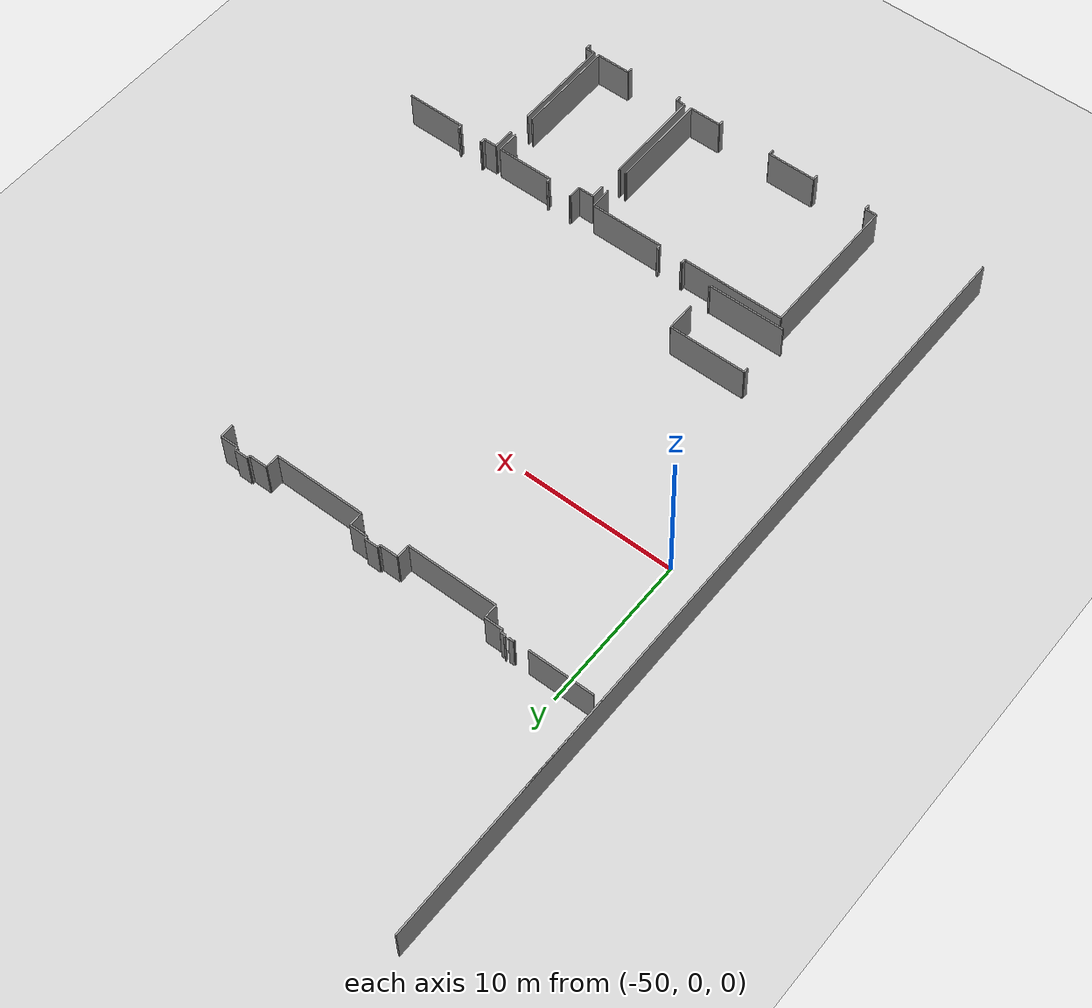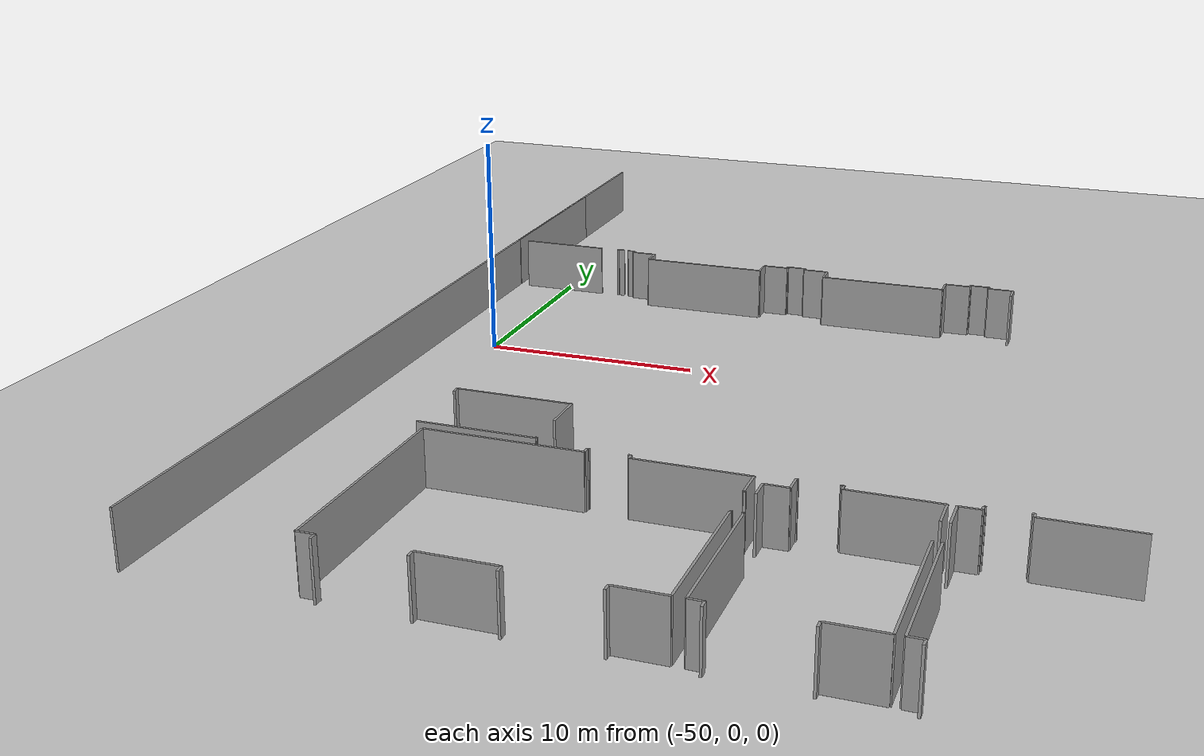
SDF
<sdf version="1.6">
 <world name="default">
  <model name="ground_plane">
   <static>1</static>
   <link name="link">
    <collision name="collision">
     <geometry><plane><normal>0 0 1</normal><size>100 100</size></plane></geometry>
     <surface><friction><ode><mu>100</mu><mu2>50</mu2></ode></friction></surface>
    </collision>
    <visual name="visual">
     <cast_shadows>0</cast_shadows>
     <geometry><plane><normal>0 0 1</normal><size>100 100</size></plane></geometry>
     <material>
      <script><uri>file://media/materials/scripts/gazebo.material</uri><name>Gazebo/Grey</name></script>
     </material>
    </visual>
   </link>
  </model>
  <model name="50045368">
   <static>1</static>
   <link name="Wall_22">
    <collision name="Wall_22_Collision">
     <geometry><box><size>9.61041931385 0.1 2.5</size></box></geometry>
     <pose>4.80520965693 0 1.25 0 0 0</pose>
    </collision>
    <visual name="Wall_22_Visual">
     <pose>4.80520965693 0 1.25 0 0 0</pose>
     <geometry><box><size>9.61041931385 0.1 2.5</size></box></geometry>
     <material>
      <script><uri>file://media/materials/scripts/gazebo.material</uri><name>Gazebo/Grey</name></script>
      <ambient>1 1 1 1</ambient>
     </material>
    </visual>
    <pose>0.00368487928844 -16.0022871665 0 0 0 1.57079632679</pose>
   </link>
   <link name="Wall_31">
    <collision name="Wall_31_Collision">
     <geometry><box><size>0.328716645489 0.1 2.5</size></box></geometry>
     <pose>0.164358322745 0 1.25 0 0 0</pose>
    </collision>
    <visual name="Wall_31_Visual">
     <pose>0.164358322745 0 1.25 0 0 0</pose>
     <geometry><box><size>0.328716645489 0.1 2.5</size></box></geometry>
     <material>
      <script><uri>file://media/materials/scripts/gazebo.material</uri><name>Gazebo/Grey</name></script>
      <ambient>1 1 1 1</ambient>
     </material>
    </visual>
    <pose>6.02121982211 -15.9770012706 0 0 0 3.14159265359</pose>
   </link>
   <link name="Wall_32">
    <collision name="Wall_32_Collision">
     <geometry><box><size>0.0722998729352 0.1 2.5</size></box></geometry>
     <pose>0.0361499364676 0 1.25 0 0 0</pose>
    </collision>
    <visual name="Wall_32_Visual">
     <pose>0.0361499364676 0 1.25 0 0 0</pose>
     <geometry><box><size>0.0722998729352 0.1 2.5</size></box></geometry>
     <material>
      <script><uri>file://media/materials/scripts/gazebo.material</uri><name>Gazebo/Grey</name></script>
      <ambient>1 1 1 1</ambient>
     </material>
    </visual>
    <pose>5.69250317662 -15.9770012706 0 0 0 -1.57079632679</pose>
   </link>
   <link name="Wall_33">
    <collision name="Wall_33_Collision">
     <geometry><box><size>4.24764930114 0.1 2.5</size></box></geometry>
     <pose>2.12382465057 0 1.25 0 0 0</pose>
    </collision>
    <visual name="Wall_33_Visual">
     <pose>2.12382465057 0 1.25 0 0 0</pose>
     <geometry><box><size>4.24764930114 0.1 2.5</size></box></geometry>
     <material>
      <script><uri>file://media/materials/scripts/gazebo.material</uri><name>Gazebo/Grey</name></script>
      <ambient>1 1 1 1</ambient>
     </material>
    </visual>
    <pose>4.7750952986 -16.0493011436 0 0 0 3.14159265359</pose>
   </link>
   <link name="Wall_34">
    <collision name="Wall_34_Collision">
     <geometry><box><size>0.0471581634587 0.1 2.5</size></box></geometry>
     <pose>0.0235790817293 0 1.25 0 0 0</pose>
    </collision>
    <visual name="Wall_34_Visual">
     <pose>0.0235790817293 0 1.25 0 0 0</pose>
     <geometry><box><size>0.0471581634587 0.1 2.5</size></box></geometry>
     <material>
      <script><uri>file://media/materials/scripts/gazebo.material</uri><name>Gazebo/Grey</name></script>
      <ambient>1 1 1 1</ambient>
     </material>
    </visual>
    <pose>0.0 -16.0493011436 0 0 0 1.49257785666</pose>
   </link>
   <link name="Wall_148">
    <collision name="Wall_148_Collision">
     <geometry><box><size>0.902795425667 0.1 2.5</size></box></geometry>
     <pose>0.451397712834 0 1.25 0 0 0</pose>
    </collision>
    <visual name="Wall_148_Visual">
     <pose>0.451397712834 0 1.25 0 0 0</pose>
     <geometry><box><size>0.902795425667 0.1 2.5</size></box></geometry>
     <material>
      <script><uri>file://media/materials/scripts/gazebo.material</uri><name>Gazebo/Grey</name></script>
      <ambient>1 1 1 1</ambient>
     </material>
    </visual>
    <pose>26.256797967 -17.0824650572 0 0 0 1.57079632679</pose>
   </link>
   <link name="Wall_149">
    <collision name="Wall_149_Collision">
     <geometry><box><size>1.18462515883 0.1 2.5</size></box></geometry>
     <pose>0.592312579416 0 1.25 0 0 0</pose>
    </collision>
    <visual name="Wall_149_Visual">
     <pose>0.592312579416 0 1.25 0 0 0</pose>
     <geometry><box><size>1.18462515883 0.1 2.5</size></box></geometry>
     <material>
      <script><uri>file://media/materials/scripts/gazebo.material</uri><name>Gazebo/Grey</name></script>
      <ambient>1 1 1 1</ambient>
     </material>
    </visual>
    <pose>26.256797967 -16.1796696315 0 0 0 3.14159265359</pose>
   </link>
   <link name="Wall_150">
    <collision name="Wall_150_Collision">
     <geometry><box><size>0.195933926302 0.1 2.5</size></box></geometry>
     <pose>0.0979669631512 0 1.25 0 0 0</pose>
    </collision>
    <visual name="Wall_150_Visual">
     <pose>0.0979669631512 0 1.25 0 0 0</pose>
     <geometry><box><size>0.195933926302 0.1 2.5</size></box></geometry>
     <material>
      <script><uri>file://media/materials/scripts/gazebo.material</uri><name>Gazebo/Grey</name></script>
      <ambient>1 1 1 1</ambient>
     </material>
    </visual>
    <pose>25.0721728081 -16.1796696315 0 0 0 1.57079632679</pose>
   </link>
   <link name="Wall_151">
    <collision name="Wall_151_Collision">
     <geometry><box><size>0.898094027954 0.1 2.5</size></box></geometry>
     <pose>0.449047013977 0 1.25 0 0 0</pose>
    </collision>
    <visual name="Wall_151_Visual">
     <pose>0.449047013977 0 1.25 0 0 0</pose>
     <geometry><box><size>0.898094027954 0.1 2.5</size></box></geometry>
     <material>
      <script><uri>file://media/materials/scripts/gazebo.material</uri><name>Gazebo/Grey</name></script>
      <ambient>1 1 1 1</ambient>
     </material>
    </visual>
    <pose>25.0721728081 -15.9837357052 0 0 0 3.14159265359</pose>
   </link>
   <link name="Wall_152">
    <collision name="Wall_152_Collision">
     <geometry><box><size>0.195933926302 0.1 2.5</size></box></geometry>
     <pose>0.0979669631512 0 1.25 0 0 0</pose>
    </collision>
    <visual name="Wall_152_Visual">
     <pose>0.0979669631512 0 1.25 0 0 0</pose>
     <geometry><box><size>0.195933926302 0.1 2.5</size></box></geometry>
     <material>
      <script><uri>file://media/materials/scripts/gazebo.material</uri><name>Gazebo/Grey</name></script>
      <ambient>1 1 1 1</ambient>
     </material>
    </visual>
    <pose>24.1740787802 -15.9837357052 0 0 0 -1.57079632679</pose>
   </link>
   <link name="Wall_153">
    <collision name="Wall_153_Collision">
     <geometry><box><size>1.20368487929 0.1 2.5</size></box></geometry>
     <pose>0.601842439644 0 1.25 0 0 0</pose>
    </collision>
    <visual name="Wall_153_Visual">
     <pose>0.601842439644 0 1.25 0 0 0</pose>
     <geometry><box><size>1.20368487929 0.1 2.5</size></box></geometry>
     <material>
      <script><uri>file://media/materials/scripts/gazebo.material</uri><name>Gazebo/Grey</name></script>
      <ambient>1 1 1 1</ambient>
     </material>
    </visual>
    <pose>24.1740787802 -16.1796696315 0 0 0 3.14159265359</pose>
   </link>
   <link name="Wall_154">
    <collision name="Wall_154_Collision">
     <geometry><box><size>0.902795425667 0.1 2.5</size></box></geometry>
     <pose>0.451397712834 0 1.25 0 0 0</pose>
    </collision>
    <visual name="Wall_154_Visual">
     <pose>0.451397712834 0 1.25 0 0 0</pose>
     <geometry><box><size>0.902795425667 0.1 2.5</size></box></geometry>
     <material>
      <script><uri>file://media/materials/scripts/gazebo.material</uri><name>Gazebo/Grey</name></script>
      <ambient>1 1 1 1</ambient>
     </material>
    </visual>
    <pose>22.9703939009 -16.1796696315 0 0 0 -1.57079632679</pose>
   </link>
   <link name="Wall_155">
    <collision name="Wall_155_Collision">
     <geometry><box><size>5.95743329098 0.1 2.5</size></box></geometry>
     <pose>2.97871664549 0 1.25 0 0 0</pose>
    </collision>
    <visual name="Wall_155_Visual">
     <pose>2.97871664549 0 1.25 0 0 0</pose>
     <geometry><box><size>5.95743329098 0.1 2.5</size></box></geometry>
     <material>
      <script><uri>file://media/materials/scripts/gazebo.material</uri><name>Gazebo/Grey</name></script>
      <ambient>1 1 1 1</ambient>
     </material>
    </visual>
    <pose>22.9703939009 -17.0824650572 0 0 0 3.14159265359</pose>
   </link>
   <link name="Wall_156">
    <collision name="Wall_156_Collision">
     <geometry><box><size>0.906861499365 0.1 2.5</size></box></geometry>
     <pose>0.453430749682 0 1.25 0 0 0</pose>
    </collision>
    <visual name="Wall_156_Visual">
     <pose>0.453430749682 0 1.25 0 0 0</pose>
     <geometry><box><size>0.906861499365 0.1 2.5</size></box></geometry>
     <material>
      <script><uri>file://media/materials/scripts/gazebo.material</uri><name>Gazebo/Grey</name></script>
      <ambient>1 1 1 1</ambient>
     </material>
    </visual>
    <pose>17.0129606099 -17.0824650572 0 0 0 1.57079632679</pose>
   </link>
   <link name="Wall_157">
    <collision name="Wall_157_Collision">
     <geometry><box><size>1.20304955527 0.1 2.5</size></box></geometry>
     <pose>0.601524777637 0 1.25 0 0 0</pose>
    </collision>
    <visual name="Wall_157_Visual">
     <pose>0.601524777637 0 1.25 0 0 0</pose>
     <geometry><box><size>1.20304955527 0.1 2.5</size></box></geometry>
     <material>
      <script><uri>file://media/materials/scripts/gazebo.material</uri><name>Gazebo/Grey</name></script>
      <ambient>1 1 1 1</ambient>
     </material>
    </visual>
    <pose>17.0129606099 -16.1756035578 0 0 0 3.14159265359</pose>
   </link>
   <link name="Wall_158">
    <collision name="Wall_158_Collision">
     <geometry><box><size>0.175857687421 0.1 2.5</size></box></geometry>
     <pose>0.0879288437103 0 1.25 0 0 0</pose>
    </collision>
    <visual name="Wall_158_Visual">
     <pose>0.0879288437103 0 1.25 0 0 0</pose>
     <geometry><box><size>0.175857687421 0.1 2.5</size></box></geometry>
     <material>
      <script><uri>file://media/materials/scripts/gazebo.material</uri><name>Gazebo/Grey</name></script>
      <ambient>1 1 1 1</ambient>
     </material>
    </visual>
    <pose>15.8099110546 -16.1756035578 0 0 0 1.57079632679</pose>
   </link>
   <link name="Wall_159">
    <collision name="Wall_159_Collision">
     <geometry><box><size>0.889961880559 0.1 2.5</size></box></geometry>
     <pose>0.44498094028 0 1.25 0 0 0</pose>
    </collision>
    <visual name="Wall_159_Visual">
     <pose>0.44498094028 0 1.25 0 0 0</pose>
     <geometry><box><size>0.889961880559 0.1 2.5</size></box></geometry>
     <material>
      <script><uri>file://media/materials/scripts/gazebo.material</uri><name>Gazebo/Grey</name></script>
      <ambient>1 1 1 1</ambient>
     </material>
    </visual>
    <pose>15.8099110546 -15.9997458704 0 0 0 3.14159265359</pose>
   </link>
   <link name="Wall_160">
    <collision name="Wall_160_Collision">
     <geometry><box><size>0.192249047014 0.1 2.5</size></box></geometry>
     <pose>0.096124523507 0 1.25 0 0 0</pose>
    </collision>
    <visual name="Wall_160_Visual">
     <pose>0.096124523507 0 1.25 0 0 0</pose>
     <geometry><box><size>0.192249047014 0.1 2.5</size></box></geometry>
     <material>
      <script><uri>file://media/materials/scripts/gazebo.material</uri><name>Gazebo/Grey</name></script>
      <ambient>1 1 1 1</ambient>
     </material>
    </visual>
    <pose>14.9199491741 -15.9997458704 0 0 0 -1.57079632679</pose>
   </link>
   <link name="Wall_161">
    <collision name="Wall_161_Collision">
     <geometry><box><size>1.19758576874 0.1 2.5</size></box></geometry>
     <pose>0.598792884371 0 1.25 0 0 0</pose>
    </collision>
    <visual name="Wall_161_Visual">
     <pose>0.598792884371 0 1.25 0 0 0</pose>
     <geometry><box><size>1.19758576874 0.1 2.5</size></box></geometry>
     <material>
      <script><uri>file://media/materials/scripts/gazebo.material</uri><name>Gazebo/Grey</name></script>
      <ambient>1 1 1 1</ambient>
     </material>
    </visual>
    <pose>14.9199491741 -16.1919949174 0 0 0 3.14159265359</pose>
   </link>
   <link name="Wall_162">
    <collision name="Wall_162_Collision">
     <geometry><box><size>0.890470139771 0.1 2.5</size></box></geometry>
     <pose>0.445235069886 0 1.25 0 0 0</pose>
    </collision>
    <visual name="Wall_162_Visual">
     <pose>0.445235069886 0 1.25 0 0 0</pose>
     <geometry><box><size>0.890470139771 0.1 2.5</size></box></geometry>
     <material>
      <script><uri>file://media/materials/scripts/gazebo.material</uri><name>Gazebo/Grey</name></script>
      <ambient>1 1 1 1</ambient>
     </material>
    </visual>
    <pose>13.7223634053 -16.1919949174 0 0 0 -1.57079632679</pose>
   </link>
   <link name="Wall_163">
    <collision name="Wall_163_Collision">
     <geometry><box><size>5.94930114358 0.1 2.5</size></box></geometry>
     <pose>2.97465057179 0 1.25 0 0 0</pose>
    </collision>
    <visual name="Wall_163_Visual">
     <pose>2.97465057179 0 1.25 0 0 0</pose>
     <geometry><box><size>5.94930114358 0.1 2.5</size></box></geometry>
     <material>
      <script><uri>file://media/materials/scripts/gazebo.material</uri><name>Gazebo/Grey</name></script>
      <ambient>1 1 1 1</ambient>
     </material>
    </visual>
    <pose>13.7223634053 -17.0824650572 0 0 0 3.14159265359</pose>
   </link>
   <link name="Wall_164">
    <collision name="Wall_164_Collision">
     <geometry><box><size>0.912452350699 0.1 2.5</size></box></geometry>
     <pose>0.456226175349 0 1.25 0 0 0</pose>
    </collision>
    <visual name="Wall_164_Visual">
     <pose>0.456226175349 0 1.25 0 0 0</pose>
     <geometry><box><size>0.912452350699 0.1 2.5</size></box></geometry>
     <material>
      <script><uri>file://media/materials/scripts/gazebo.material</uri><name>Gazebo/Grey</name></script>
      <ambient>1 1 1 1</ambient>
     </material>
    </visual>
    <pose>7.77306226175 -17.0824650572 0 0 0 1.57079632679</pose>
   </link>
   <link name="Wall_165">
    <collision name="Wall_165_Collision">
     <geometry><box><size>1.18653113088 0.1 2.5</size></box></geometry>
     <pose>0.593265565438 0 1.25 0 0 0</pose>
    </collision>
    <visual name="Wall_165_Visual">
     <pose>0.593265565438 0 1.25 0 0 0</pose>
     <geometry><box><size>1.18653113088 0.1 2.5</size></box></geometry>
     <material>
      <script><uri>file://media/materials/scripts/gazebo.material</uri><name>Gazebo/Grey</name></script>
      <ambient>1 1 1 1</ambient>
     </material>
    </visual>
    <pose>7.77306226175 -16.1700127065 0 0 0 3.14159265359</pose>
   </link>
   <link name="Wall_166">
    <collision name="Wall_166_Collision">
     <geometry><box><size>0.170266836086 0.1 2.5</size></box></geometry>
     <pose>0.0851334180432 0 1.25 0 0 0</pose>
    </collision>
    <visual name="Wall_166_Visual">
     <pose>0.0851334180432 0 1.25 0 0 0</pose>
     <geometry><box><size>0.170266836086 0.1 2.5</size></box></geometry>
     <material>
      <script><uri>file://media/materials/scripts/gazebo.material</uri><name>Gazebo/Grey</name></script>
      <ambient>1 1 1 1</ambient>
     </material>
    </visual>
    <pose>6.58653113088 -16.1700127065 0 0 0 1.57079632679</pose>
   </link>
   <link name="Wall_167">
    <collision name="Wall_167_Collision">
     <geometry><box><size>0.340533672173 0.1 2.5</size></box></geometry>
     <pose>0.170266836086 0 1.25 0 0 0</pose>
    </collision>
    <visual name="Wall_167_Visual">
     <pose>0.170266836086 0 1.25 0 0 0</pose>
     <geometry><box><size>0.340533672173 0.1 2.5</size></box></geometry>
     <material>
      <script><uri>file://media/materials/scripts/gazebo.material</uri><name>Gazebo/Grey</name></script>
      <ambient>1 1 1 1</ambient>
     </material>
    </visual>
    <pose>6.58653113088 -15.9997458704 0 0 0 3.14159265359</pose>
   </link>
   <link name="Wall_168">
    <collision name="Wall_168_Collision">
     <geometry><box><size>0.128081321474 0.1 2.5</size></box></geometry>
     <pose>0.064040660737 0 1.25 0 0 0</pose>
    </collision>
    <visual name="Wall_168_Visual">
     <pose>0.064040660737 0 1.25 0 0 0</pose>
     <geometry><box><size>0.128081321474 0.1 2.5</size></box></geometry>
     <material>
      <script><uri>file://media/materials/scripts/gazebo.material</uri><name>Gazebo/Grey</name></script>
      <ambient>1 1 1 1</ambient>
     </material>
    </visual>
    <pose>6.2459974587 -15.9997458704 0 0 0 1.57079632679</pose>
   </link>
   <link name="Wall_363">
    <collision name="Wall_363_Collision">
     <geometry><box><size>0.322109275731 0.1 2.5</size></box></geometry>
     <pose>0.161054637865 0 1.25 0 0 0</pose>
    </collision>
    <visual name="Wall_363_Visual">
     <pose>0.161054637865 0 1.25 0 0 0</pose>
     <geometry><box><size>0.322109275731 0.1 2.5</size></box></geometry>
     <material>
      <script><uri>file://media/materials/scripts/gazebo.material</uri><name>Gazebo/Grey</name></script>
      <ambient>1 1 1 1</ambient>
     </material>
    </visual>
    <pose>6.39974587039 -37.3395171537 0 0 0 1.57079632679</pose>
   </link>
   <link name="Wall_364">
    <collision name="Wall_364_Collision">
     <geometry><box><size>5.06505717916 0.1 2.5</size></box></geometry>
     <pose>2.53252858958 0 1.25 0 0 0</pose>
    </collision>
    <visual name="Wall_364_Visual">
     <pose>2.53252858958 0 1.25 0 0 0</pose>
     <geometry><box><size>5.06505717916 0.1 2.5</size></box></geometry>
     <material>
      <script><uri>file://media/materials/scripts/gazebo.material</uri><name>Gazebo/Grey</name></script>
      <ambient>1 1 1 1</ambient>
     </material>
    </visual>
    <pose>6.39974587039 -37.017407878 0 0 0 0.0</pose>
   </link>
   <link name="Wall_365">
    <collision name="Wall_365_Collision">
     <geometry><box><size>1.84256670902 0.1 2.5</size></box></geometry>
     <pose>0.921283354511 0 1.25 0 0 0</pose>
    </collision>
    <visual name="Wall_365_Visual">
     <pose>0.921283354511 0 1.25 0 0 0</pose>
     <geometry><box><size>1.84256670902 0.1 2.5</size></box></geometry>
     <material>
      <script><uri>file://media/materials/scripts/gazebo.material</uri><name>Gazebo/Grey</name></script>
      <ambient>1 1 1 1</ambient>
     </material>
    </visual>
    <pose>11.4648030496 -37.017407878 0 0 0 -1.57079632679</pose>
   </link>
   <link name="Wall_366">
    <collision name="Wall_366_Collision">
     <geometry><box><size>0.104447268107 0.1 2.5</size></box></geometry>
     <pose>0.0522236340534 0 1.25 0 0 0</pose>
    </collision>
    <visual name="Wall_366_Visual">
     <pose>0.0522236340534 0 1.25 0 0 0</pose>
     <geometry><box><size>0.104447268107 0.1 2.5</size></box></geometry>
     <material>
      <script><uri>file://media/materials/scripts/gazebo.material</uri><name>Gazebo/Grey</name></script>
      <ambient>1 1 1 1</ambient>
     </material>
    </visual>
    <pose>11.4648030496 -40.593519695 0 0 0 -1.57079632679</pose>
   </link>
   <link name="Wall_367">
    <collision name="Wall_367_Collision">
     <geometry><box><size>5.06506896696 0.1 2.5</size></box></geometry>
     <pose>2.53253448348 0 1.25 0 0 0</pose>
    </collision>
    <visual name="Wall_367_Visual">
     <pose>2.53253448348 0 1.25 0 0 0</pose>
     <geometry><box><size>5.06506896696 0.1 2.5</size></box></geometry>
     <material>
      <script><uri>file://media/materials/scripts/gazebo.material</uri><name>Gazebo/Grey</name></script>
      <ambient>1 1 1 1</ambient>
     </material>
    </visual>
    <pose>11.4648030496 -40.6979669632 0 0 0 -3.13943521376</pose>
   </link>
   <link name="Wall_368">
    <collision name="Wall_368_Collision">
     <geometry><box><size>9.40355781449 0.1 2.5</size></box></geometry>
     <pose>4.70177890724 0 1.25 0 0 0</pose>
    </collision>
    <visual name="Wall_368_Visual">
     <pose>4.70177890724 0 1.25 0 0 0</pose>
     <geometry><box><size>9.40355781449 0.1 2.5</size></box></geometry>
     <material>
      <script><uri>file://media/materials/scripts/gazebo.material</uri><name>Gazebo/Grey</name></script>
      <ambient>1 1 1 1</ambient>
     </material>
    </visual>
    <pose>6.96543837357 -50.6997458704 0 0 0 1.57079632679</pose>
   </link>
   <link name="Wall_369">
    <collision name="Wall_369_Collision">
     <geometry><box><size>6.72858958069 0.1 2.5</size></box></geometry>
     <pose>3.36429479034 0 1.25 0 0 0</pose>
    </collision>
    <visual name="Wall_369_Visual">
     <pose>3.36429479034 0 1.25 0 0 0</pose>
     <geometry><box><size>6.72858958069 0.1 2.5</size></box></geometry>
     <material>
      <script><uri>file://media/materials/scripts/gazebo.material</uri><name>Gazebo/Grey</name></script>
      <ambient>1 1 1 1</ambient>
     </material>
    </visual>
    <pose>6.96543837357 -41.2961880559 0 0 0 0.0</pose>
   </link>
   <link name="Wall_370">
    <collision name="Wall_370_Collision">
     <geometry><box><size>0.289326556544 0.1 2.5</size></box></geometry>
     <pose>0.144663278272 0 1.25 0 0 0</pose>
    </collision>
    <visual name="Wall_370_Visual">
     <pose>0.144663278272 0 1.25 0 0 0</pose>
     <geometry><box><size>0.289326556544 0.1 2.5</size></box></geometry>
     <material>
      <script><uri>file://media/materials/scripts/gazebo.material</uri><name>Gazebo/Grey</name></script>
      <ambient>1 1 1 1</ambient>
     </material>
    </visual>
    <pose>13.6940279543 -41.2961880559 0 0 0 1.57079632679</pose>
   </link>
   <link name="Wall_371">
    <collision name="Wall_371_Collision">
     <geometry><box><size>0.0911054637865 0.1 2.5</size></box></geometry>
     <pose>0.0455527318933 0 1.25 0 0 0</pose>
    </collision>
    <visual name="Wall_371_Visual">
     <pose>0.0455527318933 0 1.25 0 0 0</pose>
     <geometry><box><size>0.0911054637865 0.1 2.5</size></box></geometry>
     <material>
      <script><uri>file://media/materials/scripts/gazebo.material</uri><name>Gazebo/Grey</name></script>
      <ambient>1 1 1 1</ambient>
     </material>
    </visual>
    <pose>13.6940279543 -41.0068614994 0 0 0 0.0</pose>
   </link>
   <link name="Wall_372">
    <collision name="Wall_372_Collision">
     <geometry><box><size>0.126810673443 0.1 2.5</size></box></geometry>
     <pose>0.0634053367217 0 1.25 0 0 0</pose>
    </collision>
    <visual name="Wall_372_Visual">
     <pose>0.0634053367217 0 1.25 0 0 0</pose>
     <geometry><box><size>0.126810673443 0.1 2.5</size></box></geometry>
     <material>
      <script><uri>file://media/materials/scripts/gazebo.material</uri><name>Gazebo/Grey</name></script>
      <ambient>1 1 1 1</ambient>
     </material>
    </visual>
    <pose>15.3297331639 -41.0068614994 0 0 0 0.0</pose>
   </link>
   <link name="Wall_373">
    <collision name="Wall_373_Collision">
     <geometry><box><size>0.274205844981 0.1 2.5</size></box></geometry>
     <pose>0.13710292249 0 1.25 0 0 0</pose>
    </collision>
    <visual name="Wall_373_Visual">
     <pose>0.13710292249 0 1.25 0 0 0</pose>
     <geometry><box><size>0.274205844981 0.1 2.5</size></box></geometry>
     <material>
      <script><uri>file://media/materials/scripts/gazebo.material</uri><name>Gazebo/Grey</name></script>
      <ambient>1 1 1 1</ambient>
     </material>
    </visual>
    <pose>15.4565438374 -41.0068614994 0 0 0 -1.57079632679</pose>
   </link>
   <link name="Wall_374">
    <collision name="Wall_374_Collision">
     <geometry><box><size>4.81397712834 0.1 2.5</size></box></geometry>
     <pose>2.40698856417 0 1.25 0 0 0</pose>
    </collision>
    <visual name="Wall_374_Visual">
     <pose>2.40698856417 0 1.25 0 0 0</pose>
     <geometry><box><size>4.81397712834 0.1 2.5</size></box></geometry>
     <material>
      <script><uri>file://media/materials/scripts/gazebo.material</uri><name>Gazebo/Grey</name></script>
      <ambient>1 1 1 1</ambient>
     </material>
    </visual>
    <pose>15.4565438374 -41.2810673443 0 0 0 0.0</pose>
   </link>
   <link name="Wall_375">
    <collision name="Wall_375_Collision">
     <geometry><box><size>1.32299872935 0.1 2.5</size></box></geometry>
     <pose>0.661499364676 0 1.25 0 0 0</pose>
    </collision>
    <visual name="Wall_375_Visual">
     <pose>0.661499364676 0 1.25 0 0 0</pose>
     <geometry><box><size>1.32299872935 0.1 2.5</size></box></geometry>
     <material>
      <script><uri>file://media/materials/scripts/gazebo.material</uri><name>Gazebo/Grey</name></script>
      <ambient>1 1 1 1</ambient>
     </material>
    </visual>
    <pose>20.2705209657 -41.2810673443 0 0 0 -1.57079632679</pose>
   </link>
   <link name="Wall_376">
    <collision name="Wall_376_Collision">
     <geometry><box><size>0.038373570521 0.1 2.5</size></box></geometry>
     <pose>0.0191867852605 0 1.25 0 0 0</pose>
    </collision>
    <visual name="Wall_376_Visual">
     <pose>0.0191867852605 0 1.25 0 0 0</pose>
     <geometry><box><size>0.038373570521 0.1 2.5</size></box></geometry>
     <material>
      <script><uri>file://media/materials/scripts/gazebo.material</uri><name>Gazebo/Grey</name></script>
      <ambient>1 1 1 1</ambient>
     </material>
    </visual>
    <pose>20.2705209657 -42.6040660737 0 0 0 0.0</pose>
   </link>
   <link name="Wall_377">
    <collision name="Wall_377_Collision">
     <geometry><box><size>0.0714104193139 0.1 2.5</size></box></geometry>
     <pose>0.0357052096569 0 1.25 0 0 0</pose>
    </collision>
    <visual name="Wall_377_Visual">
     <pose>0.0357052096569 0 1.25 0 0 0</pose>
     <geometry><box><size>0.0714104193139 0.1 2.5</size></box></geometry>
     <material>
      <script><uri>file://media/materials/scripts/gazebo.material</uri><name>Gazebo/Grey</name></script>
      <ambient>1 1 1 1</ambient>
     </material>
    </visual>
    <pose>20.3088945362 -42.6040660737 0 0 0 -1.57079632679</pose>
   </link>
   <link name="Wall_378">
    <collision name="Wall_378_Collision">
     <geometry><box><size>0.0747141041931 0.1 2.5</size></box></geometry>
     <pose>0.0373570520966 0 1.25 0 0 0</pose>
    </collision>
    <visual name="Wall_378_Visual">
     <pose>0.0373570520966 0 1.25 0 0 0</pose>
     <geometry><box><size>0.0747141041931 0.1 2.5</size></box></geometry>
     <material>
      <script><uri>file://media/materials/scripts/gazebo.material</uri><name>Gazebo/Grey</name></script>
      <ambient>1 1 1 1</ambient>
     </material>
    </visual>
    <pose>20.3088945362 -44.2717916137 0 0 0 -1.57079632679</pose>
   </link>
   <link name="Wall_379">
    <collision name="Wall_379_Collision">
     <geometry><box><size>0.0297331639136 0.1 2.5</size></box></geometry>
     <pose>0.0148665819568 0 1.25 0 0 0</pose>
    </collision>
    <visual name="Wall_379_Visual">
     <pose>0.0148665819568 0 1.25 0 0 0</pose>
     <geometry><box><size>0.0297331639136 0.1 2.5</size></box></geometry>
     <material>
      <script><uri>file://media/materials/scripts/gazebo.material</uri><name>Gazebo/Grey</name></script>
      <ambient>1 1 1 1</ambient>
     </material>
    </visual>
    <pose>20.3088945362 -44.3465057179 0 0 0 3.14159265359</pose>
   </link>
   <link name="Wall_380">
    <collision name="Wall_380_Collision">
     <geometry><box><size>6.34891994917 0.1 2.5</size></box></geometry>
     <pose>3.17445997459 0 1.25 0 0 0</pose>
    </collision>
    <visual name="Wall_380_Visual">
     <pose>3.17445997459 0 1.25 0 0 0</pose>
     <geometry><box><size>6.34891994917 0.1 2.5</size></box></geometry>
     <material>
      <script><uri>file://media/materials/scripts/gazebo.material</uri><name>Gazebo/Grey</name></script>
      <ambient>1 1 1 1</ambient>
     </material>
    </visual>
    <pose>20.2791613723 -44.3465057179 0 0 0 -1.57079632679</pose>
   </link>
   <link name="Wall_381">
    <collision name="Wall_381_Collision">
     <geometry><box><size>2.08157560356 0.1 2.5</size></box></geometry>
     <pose>1.04078780178 0 1.25 0 0 0</pose>
    </collision>
    <visual name="Wall_381_Visual">
     <pose>1.04078780178 0 1.25 0 0 0</pose>
     <geometry><box><size>2.08157560356 0.1 2.5</size></box></geometry>
     <material>
      <script><uri>file://media/materials/scripts/gazebo.material</uri><name>Gazebo/Grey</name></script>
      <ambient>1 1 1 1</ambient>
     </material>
    </visual>
    <pose>20.2791613723 -50.6954256671 0 0 0 3.14159265359</pose>
   </link>
   <link name="Wall_382">
    <collision name="Wall_382_Collision">
     <geometry><box><size>0.326937738247 0.1 2.5</size></box></geometry>
     <pose>0.163468869123 0 1.25 0 0 0</pose>
    </collision>
    <visual name="Wall_382_Visual">
     <pose>0.163468869123 0 1.25 0 0 0</pose>
     <geometry><box><size>0.326937738247 0.1 2.5</size></box></geometry>
     <material>
      <script><uri>file://media/materials/scripts/gazebo.material</uri><name>Gazebo/Grey</name></script>
      <ambient>1 1 1 1</ambient>
     </material>
    </visual>
    <pose>18.1975857687 -50.6954256671 0 0 0 -1.57079632679</pose>
   </link>
   <link name="Wall_383">
    <collision name="Wall_383_Collision">
     <geometry><box><size>0.339644218551 0.1 2.5</size></box></geometry>
     <pose>0.169822109276 0 1.25 0 0 0</pose>
    </collision>
    <visual name="Wall_383_Visual">
     <pose>0.169822109276 0 1.25 0 0 0</pose>
     <geometry><box><size>0.339644218551 0.1 2.5</size></box></geometry>
     <material>
      <script><uri>file://media/materials/scripts/gazebo.material</uri><name>Gazebo/Grey</name></script>
      <ambient>1 1 1 1</ambient>
     </material>
    </visual>
    <pose>14.5297331639 -51.0223634053 0 0 0 1.57079632679</pose>
   </link>
   <link name="Wall_384">
    <collision name="Wall_384_Collision">
     <geometry><box><size>3.17293519695 0.1 2.5</size></box></geometry>
     <pose>1.58646759848 0 1.25 0 0 0</pose>
    </collision>
    <visual name="Wall_384_Visual">
     <pose>1.58646759848 0 1.25 0 0 0</pose>
     <geometry><box><size>3.17293519695 0.1 2.5</size></box></geometry>
     <material>
      <script><uri>file://media/materials/scripts/gazebo.material</uri><name>Gazebo/Grey</name></script>
      <ambient>1 1 1 1</ambient>
     </material>
    </visual>
    <pose>14.5297331639 -50.6827191868 0 0 0 3.14159265359</pose>
   </link>
   <link name="Wall_385">
    <collision name="Wall_385_Collision">
     <geometry><box><size>0.347268106734 0.1 2.5</size></box></geometry>
     <pose>0.173634053367 0 1.25 0 0 0</pose>
    </collision>
    <visual name="Wall_385_Visual">
     <pose>0.173634053367 0 1.25 0 0 0</pose>
     <geometry><box><size>0.347268106734 0.1 2.5</size></box></geometry>
     <material>
      <script><uri>file://media/materials/scripts/gazebo.material</uri><name>Gazebo/Grey</name></script>
      <ambient>1 1 1 1</ambient>
     </material>
    </visual>
    <pose>11.356797967 -50.6827191868 0 0 0 -1.57079632679</pose>
   </link>
   <link name="Wall_386">
    <collision name="Wall_386_Collision">
     <geometry><box><size>0.338627700127 0.1 2.5</size></box></geometry>
     <pose>0.169313850064 0 1.25 0 0 0</pose>
    </collision>
    <visual name="Wall_386_Visual">
     <pose>0.169313850064 0 1.25 0 0 0</pose>
     <geometry><box><size>0.338627700127 0.1 2.5</size></box></geometry>
     <material>
      <script><uri>file://media/materials/scripts/gazebo.material</uri><name>Gazebo/Grey</name></script>
      <ambient>1 1 1 1</ambient>
     </material>
    </visual>
    <pose>7.7124523507 -51.0299872935 0 0 0 1.57079632679</pose>
   </link>
   <link name="Wall_387">
    <collision name="Wall_387_Collision">
     <geometry><box><size>0.747061049491 0.1 2.5</size></box></geometry>
     <pose>0.373530524746 0 1.25 0 0 0</pose>
    </collision>
    <visual name="Wall_387_Visual">
     <pose>0.373530524746 0 1.25 0 0 0</pose>
     <geometry><box><size>0.747061049491 0.1 2.5</size></box></geometry>
     <material>
      <script><uri>file://media/materials/scripts/gazebo.material</uri><name>Gazebo/Grey</name></script>
      <ambient>1 1 1 1</ambient>
     </material>
    </visual>
    <pose>7.7124523507 -50.6913595934 0 0 0 -3.13036672614</pose>
   </link>
   <link name="Wall_388">
    <collision name="Wall_388_Collision">
     <geometry><box><size>6.33303684879 0.1 2.5</size></box></geometry>
     <pose>3.1665184244 0 1.25 0 0 0</pose>
    </collision>
    <visual name="Wall_388_Visual">
     <pose>3.1665184244 0 1.25 0 0 0</pose>
     <geometry><box><size>6.33303684879 0.1 2.5</size></box></geometry>
     <material>
      <script><uri>file://media/materials/scripts/gazebo.material</uri><name>Gazebo/Grey</name></script>
      <ambient>1 1 1 1</ambient>
     </material>
    </visual>
    <pose>20.7665819568 -50.675476493 0 0 0 1.57079632679</pose>
   </link>
   <link name="Wall_389">
    <collision name="Wall_389_Collision">
     <geometry><box><size>0.0339263024142 0.1 2.5</size></box></geometry>
     <pose>0.0169631512071 0 1.25 0 0 0</pose>
    </collision>
    <visual name="Wall_389_Visual">
     <pose>0.0169631512071 0 1.25 0 0 0</pose>
     <geometry><box><size>0.0339263024142 0.1 2.5</size></box></geometry>
     <material>
      <script><uri>file://media/materials/scripts/gazebo.material</uri><name>Gazebo/Grey</name></script>
      <ambient>1 1 1 1</ambient>
     </material>
    </visual>
    <pose>20.7665819568 -44.3424396442 0 0 0 3.14159265359</pose>
   </link>
   <link name="Wall_390">
    <collision name="Wall_390_Collision">
     <geometry><box><size>0.0721728081322 0.1 2.5</size></box></geometry>
     <pose>0.0360864040661 0 1.25 0 0 0</pose>
    </collision>
    <visual name="Wall_390_Visual">
     <pose>0.0360864040661 0 1.25 0 0 0</pose>
     <geometry><box><size>0.0721728081322 0.1 2.5</size></box></geometry>
     <material>
      <script><uri>file://media/materials/scripts/gazebo.material</uri><name>Gazebo/Grey</name></script>
      <ambient>1 1 1 1</ambient>
     </material>
    </visual>
    <pose>20.7326556544 -44.3424396442 0 0 0 1.57079632679</pose>
   </link>
   <link name="Wall_391">
    <collision name="Wall_391_Collision">
     <geometry><box><size>0.893011435832 0.1 2.5</size></box></geometry>
     <pose>0.446505717916 0 1.25 0 0 0</pose>
    </collision>
    <visual name="Wall_391_Visual">
     <pose>0.446505717916 0 1.25 0 0 0</pose>
     <geometry><box><size>0.893011435832 0.1 2.5</size></box></geometry>
     <material>
      <script><uri>file://media/materials/scripts/gazebo.material</uri><name>Gazebo/Grey</name></script>
      <ambient>1 1 1 1</ambient>
     </material>
    </visual>
    <pose>20.7326556544 -42.6850063532 0 0 0 1.57079632679</pose>
   </link>
   <link name="Wall_392">
    <collision name="Wall_392_Collision">
     <geometry><box><size>1.02592121982 0.1 2.5</size></box></geometry>
     <pose>0.512960609911 0 1.25 0 0 0</pose>
    </collision>
    <visual name="Wall_392_Visual">
     <pose>0.512960609911 0 1.25 0 0 0</pose>
     <geometry><box><size>1.02592121982 0.1 2.5</size></box></geometry>
     <material>
      <script><uri>file://media/materials/scripts/gazebo.material</uri><name>Gazebo/Grey</name></script>
      <ambient>1 1 1 1</ambient>
     </material>
    </visual>
    <pose>20.7326556544 -41.7919949174 0 0 0 0.0</pose>
   </link>
   <link name="Wall_393">
    <collision name="Wall_393_Collision">
     <geometry><box><size>0.798475222363 0.1 2.5</size></box></geometry>
     <pose>0.399237611182 0 1.25 0 0 0</pose>
    </collision>
    <visual name="Wall_393_Visual">
     <pose>0.399237611182 0 1.25 0 0 0</pose>
     <geometry><box><size>0.798475222363 0.1 2.5</size></box></geometry>
     <material>
      <script><uri>file://media/materials/scripts/gazebo.material</uri><name>Gazebo/Grey</name></script>
      <ambient>1 1 1 1</ambient>
     </material>
    </visual>
    <pose>21.7585768742 -41.7919949174 0 0 0 1.57079632679</pose>
   </link>
   <link name="Wall_394">
    <collision name="Wall_394_Collision">
     <geometry><box><size>0.0939008894536 0.1 2.5</size></box></geometry>
     <pose>0.0469504447268 0 1.25 0 0 0</pose>
    </collision>
    <visual name="Wall_394_Visual">
     <pose>0.0469504447268 0 1.25 0 0 0</pose>
     <geometry><box><size>0.0939008894536 0.1 2.5</size></box></geometry>
     <material>
      <script><uri>file://media/materials/scripts/gazebo.material</uri><name>Gazebo/Grey</name></script>
      <ambient>1 1 1 1</ambient>
     </material>
    </visual>
    <pose>21.7585768742 -40.993519695 0 0 0 0.0</pose>
   </link>
   <link name="Wall_395">
    <collision name="Wall_395_Collision">
     <geometry><box><size>0.12998729352 0.1 2.5</size></box></geometry>
     <pose>0.0649936467598 0 1.25 0 0 0</pose>
    </collision>
    <visual name="Wall_395_Visual">
     <pose>0.0649936467598 0 1.25 0 0 0</pose>
     <geometry><box><size>0.12998729352 0.1 2.5</size></box></geometry>
     <material>
      <script><uri>file://media/materials/scripts/gazebo.material</uri><name>Gazebo/Grey</name></script>
      <ambient>1 1 1 1</ambient>
     </material>
    </visual>
    <pose>23.3804320203 -40.993519695 0 0 0 0.0</pose>
   </link>
   <link name="Wall_396">
    <collision name="Wall_396_Collision">
     <geometry><box><size>0.288945362135 0.1 2.5</size></box></geometry>
     <pose>0.144472681067 0 1.25 0 0 0</pose>
    </collision>
    <visual name="Wall_396_Visual">
     <pose>0.144472681067 0 1.25 0 0 0</pose>
     <geometry><box><size>0.288945362135 0.1 2.5</size></box></geometry>
     <material>
      <script><uri>file://media/materials/scripts/gazebo.material</uri><name>Gazebo/Grey</name></script>
      <ambient>1 1 1 1</ambient>
     </material>
    </visual>
    <pose>23.5104193139 -40.993519695 0 0 0 -1.57079632679</pose>
   </link>
   <link name="Wall_397">
    <collision name="Wall_397_Collision">
     <geometry><box><size>3.72630241423 0.1 2.5</size></box></geometry>
     <pose>1.86315120712 0 1.25 0 0 0</pose>
    </collision>
    <visual name="Wall_397_Visual">
     <pose>1.86315120712 0 1.25 0 0 0</pose>
     <geometry><box><size>3.72630241423 0.1 2.5</size></box></geometry>
     <material>
      <script><uri>file://media/materials/scripts/gazebo.material</uri><name>Gazebo/Grey</name></script>
      <ambient>1 1 1 1</ambient>
     </material>
    </visual>
    <pose>23.5104193139 -41.2824650572 0 0 0 0.0</pose>
   </link>
   <link name="Wall_398">
    <collision name="Wall_398_Collision">
     <geometry><box><size>1.40254129606 0.1 2.5</size></box></geometry>
     <pose>0.70127064803 0 1.25 0 0 0</pose>
    </collision>
    <visual name="Wall_398_Visual">
     <pose>0.70127064803 0 1.25 0 0 0</pose>
     <geometry><box><size>1.40254129606 0.1 2.5</size></box></geometry>
     <material>
      <script><uri>file://media/materials/scripts/gazebo.material</uri><name>Gazebo/Grey</name></script>
      <ambient>1 1 1 1</ambient>
     </material>
    </visual>
    <pose>27.2367217281 -41.2824650572 0 0 0 -1.57079632679</pose>
   </link>
   <link name="Wall_399">
    <collision name="Wall_399_Collision">
     <geometry><box><size>6.45374841169 0.1 2.5</size></box></geometry>
     <pose>3.22687420584 0 1.25 0 0 0</pose>
    </collision>
    <visual name="Wall_399_Visual">
     <pose>3.22687420584 0 1.25 0 0 0</pose>
     <geometry><box><size>6.45374841169 0.1 2.5</size></box></geometry>
     <material>
      <script><uri>file://media/materials/scripts/gazebo.material</uri><name>Gazebo/Grey</name></script>
      <ambient>1 1 1 1</ambient>
     </material>
    </visual>
    <pose>27.2367217281 -44.2385006353 0 0 0 -1.57079632679</pose>
   </link>
   <link name="Wall_400">
    <collision name="Wall_400_Collision">
     <geometry><box><size>2.23621346887 0.1 2.5</size></box></geometry>
     <pose>1.11810673443 0 1.25 0 0 0</pose>
    </collision>
    <visual name="Wall_400_Visual">
     <pose>1.11810673443 0 1.25 0 0 0</pose>
     <geometry><box><size>2.23621346887 0.1 2.5</size></box></geometry>
     <material>
      <script><uri>file://media/materials/scripts/gazebo.material</uri><name>Gazebo/Grey</name></script>
      <ambient>1 1 1 1</ambient>
     </material>
    </visual>
    <pose>27.2367217281 -50.692249047 0 0 0 3.14159265359</pose>
   </link>
   <link name="Wall_401">
    <collision name="Wall_401_Collision">
     <geometry><box><size>0.334434561626 0.1 2.5</size></box></geometry>
     <pose>0.167217280813 0 1.25 0 0 0</pose>
    </collision>
    <visual name="Wall_401_Visual">
     <pose>0.167217280813 0 1.25 0 0 0</pose>
     <geometry><box><size>0.334434561626 0.1 2.5</size></box></geometry>
     <material>
      <script><uri>file://media/materials/scripts/gazebo.material</uri><name>Gazebo/Grey</name></script>
      <ambient>1 1 1 1</ambient>
     </material>
    </visual>
    <pose>25.0005082592 -50.692249047 0 0 0 -1.57079632679</pose>
   </link>
   <link name="Wall_402">
    <collision name="Wall_402_Collision">
     <geometry><box><size>0.338119440915 0.1 2.5</size></box></geometry>
     <pose>0.169059720457 0 1.25 0 0 0</pose>
    </collision>
    <visual name="Wall_402_Visual">
     <pose>0.169059720457 0 1.25 0 0 0</pose>
     <geometry><box><size>0.338119440915 0.1 2.5</size></box></geometry>
     <material>
      <script><uri>file://media/materials/scripts/gazebo.material</uri><name>Gazebo/Grey</name></script>
      <ambient>1 1 1 1</ambient>
     </material>
    </visual>
    <pose>21.3601016518 -51.0266836086 0 0 0 1.57079632679</pose>
   </link>
   <link name="Wall_403">
    <collision name="Wall_403_Collision">
     <geometry><box><size>0.593663975356 0.1 2.5</size></box></geometry>
     <pose>0.296831987678 0 1.25 0 0 0</pose>
    </collision>
    <visual name="Wall_403_Visual">
     <pose>0.296831987678 0 1.25 0 0 0</pose>
     <geometry><box><size>0.593663975356 0.1 2.5</size></box></geometry>
     <material>
      <script><uri>file://media/materials/scripts/gazebo.material</uri><name>Gazebo/Grey</name></script>
      <ambient>1 1 1 1</ambient>
     </material>
    </visual>
    <pose>21.3601016518 -50.6885641677 0 0 0 3.11954527391</pose>
   </link>
   <link name="Wall_404">
    <collision name="Wall_404_Collision">
     <geometry><box><size>6.43634053367 0.1 2.5</size></box></geometry>
     <pose>3.21817026684 0 1.25 0 0 0</pose>
    </collision>
    <visual name="Wall_404_Visual">
     <pose>3.21817026684 0 1.25 0 0 0</pose>
     <geometry><box><size>6.43634053367 0.1 2.5</size></box></geometry>
     <material>
      <script><uri>file://media/materials/scripts/gazebo.material</uri><name>Gazebo/Grey</name></script>
      <ambient>1 1 1 1</ambient>
     </material>
    </visual>
    <pose>27.5822109276 -50.6794155019 0 0 0 1.57079632679</pose>
   </link>
   <link name="Wall_405">
    <collision name="Wall_405_Collision">
     <geometry><box><size>1.40914866582 0.1 2.5</size></box></geometry>
     <pose>0.70457433291 0 1.25 0 0 0</pose>
    </collision>
    <visual name="Wall_405_Visual">
     <pose>0.70457433291 0 1.25 0 0 0</pose>
     <geometry><box><size>1.40914866582 0.1 2.5</size></box></geometry>
     <material>
      <script><uri>file://media/materials/scripts/gazebo.material</uri><name>Gazebo/Grey</name></script>
      <ambient>1 1 1 1</ambient>
     </material>
    </visual>
    <pose>27.5822109276 -42.7060991105 0 0 0 1.57079632679</pose>
   </link>
   <link name="Wall_406">
    <collision name="Wall_406_Collision">
     <geometry><box><size>0.87293519695 0.1 2.5</size></box></geometry>
     <pose>0.436467598475 0 1.25 0 0 0</pose>
    </collision>
    <visual name="Wall_406_Visual">
     <pose>0.436467598475 0 1.25 0 0 0</pose>
     <geometry><box><size>0.87293519695 0.1 2.5</size></box></geometry>
     <material>
      <script><uri>file://media/materials/scripts/gazebo.material</uri><name>Gazebo/Grey</name></script>
      <ambient>1 1 1 1</ambient>
     </material>
    </visual>
    <pose>27.5822109276 -41.2969504447 0 0 0 0.0</pose>
   </link>
   <link name="Wall_407">
    <collision name="Wall_407_Collision">
     <geometry><box><size>0.274459974587 0.1 2.5</size></box></geometry>
     <pose>0.137229987294 0 1.25 0 0 0</pose>
    </collision>
    <visual name="Wall_407_Visual">
     <pose>0.137229987294 0 1.25 0 0 0</pose>
     <geometry><box><size>0.274459974587 0.1 2.5</size></box></geometry>
     <material>
      <script><uri>file://media/materials/scripts/gazebo.material</uri><name>Gazebo/Grey</name></script>
      <ambient>1 1 1 1</ambient>
     </material>
    </visual>
    <pose>28.4551461245 -41.2969504447 0 0 0 1.57079632679</pose>
   </link>
   <link name="Wall_408">
    <collision name="Wall_408_Collision">
     <geometry><box><size>0.0975857687421 0.1 2.5</size></box></geometry>
     <pose>0.048792884371 0 1.25 0 0 0</pose>
    </collision>
    <visual name="Wall_408_Visual">
     <pose>0.048792884371 0 1.25 0 0 0</pose>
     <geometry><box><size>0.0975857687421 0.1 2.5</size></box></geometry>
     <material>
      <script><uri>file://media/materials/scripts/gazebo.material</uri><name>Gazebo/Grey</name></script>
      <ambient>1 1 1 1</ambient>
     </material>
    </visual>
    <pose>28.4551461245 -41.0224904701 0 0 0 0.0</pose>
   </link>
   <link name="Wall_409">
    <collision name="Wall_409_Collision">
     <geometry><box><size>0.106480304956 0.1 2.5</size></box></geometry>
     <pose>0.0532401524778 0 1.25 0 0 0</pose>
    </collision>
    <visual name="Wall_409_Visual">
     <pose>0.0532401524778 0 1.25 0 0 0</pose>
     <geometry><box><size>0.106480304956 0.1 2.5</size></box></geometry>
     <material>
      <script><uri>file://media/materials/scripts/gazebo.material</uri><name>Gazebo/Grey</name></script>
      <ambient>1 1 1 1</ambient>
     </material>
    </visual>
    <pose>30.0998729352 -41.0224904701 0 0 0 0.0</pose>
   </link>
   <link name="Wall_410">
    <collision name="Wall_410_Collision">
     <geometry><box><size>0.259974587039 0.1 2.5</size></box></geometry>
     <pose>0.12998729352 0 1.25 0 0 0</pose>
    </collision>
    <visual name="Wall_410_Visual">
     <pose>0.12998729352 0 1.25 0 0 0</pose>
     <geometry><box><size>0.259974587039 0.1 2.5</size></box></geometry>
     <material>
      <script><uri>file://media/materials/scripts/gazebo.material</uri><name>Gazebo/Grey</name></script>
      <ambient>1 1 1 1</ambient>
     </material>
    </visual>
    <pose>30.2063532402 -41.0224904701 0 0 0 -1.57079632679</pose>
   </link>
   <link name="Wall_411">
    <collision name="Wall_411_Collision">
     <geometry><box><size>3.86543837357 0.1 2.5</size></box></geometry>
     <pose>1.93271918679 0 1.25 0 0 0</pose>
    </collision>
    <visual name="Wall_411_Visual">
     <pose>1.93271918679 0 1.25 0 0 0</pose>
     <geometry><box><size>3.86543837357 0.1 2.5</size></box></geometry>
     <material>
      <script><uri>file://media/materials/scripts/gazebo.material</uri><name>Gazebo/Grey</name></script>
      <ambient>1 1 1 1</ambient>
     </material>
    </visual>
    <pose>30.2063532402 -41.2824650572 0 0 0 0.0</pose>
   </link>
   <link name="Wall_420">
    <collision name="Wall_420_Collision">
     <geometry><box><size>0.336975857687 0.1 2.5</size></box></geometry>
     <pose>0.168487928844 0 1.25 0 0 0</pose>
    </collision>
    <visual name="Wall_420_Visual">
     <pose>0.168487928844 0 1.25 0 0 0</pose>
     <geometry><box><size>0.336975857687 0.1 2.5</size></box></geometry>
     <material>
      <script><uri>file://media/materials/scripts/gazebo.material</uri><name>Gazebo/Grey</name></script>
      <ambient>1 1 1 1</ambient>
     </material>
    </visual>
    <pose>28.1776365947 -51.0216010165 0 0 0 1.57079632679</pose>
   </link>
   <link name="Wall_421">
    <collision name="Wall_421_Collision">
     <geometry><box><size>0.595448457513 0.1 2.5</size></box></geometry>
     <pose>0.297724228757 0 1.25 0 0 0</pose>
    </collision>
    <visual name="Wall_421_Visual">
     <pose>0.297724228757 0 1.25 0 0 0</pose>
     <geometry><box><size>0.595448457513 0.1 2.5</size></box></geometry>
     <material>
      <script><uri>file://media/materials/scripts/gazebo.material</uri><name>Gazebo/Grey</name></script>
      <ambient>1 1 1 1</ambient>
     </material>
    </visual>
    <pose>28.1776365947 -50.6846251588 0 0 0 3.13284341035</pose>
   </link>
   <link name="Wall_622">
    <collision name="Wall_622_Collision">
     <geometry><box><size>51.2883100381 0.1 2.5</size></box></geometry>
     <pose>25.6441550191 0 1.25 0 0 0</pose>
    </collision>
    <visual name="Wall_622_Visual">
     <pose>25.6441550191 0 1.25 0 0 0</pose>
     <geometry><box><size>51.2883100381 0.1 2.5</size></box></geometry>
     <material>
      <script><uri>file://media/materials/scripts/gazebo.material</uri><name>Gazebo/Grey</name></script>
      <ambient>1 1 1 1</ambient>
     </material>
    </visual>
    <pose>0.0 -51.2883100381 0 0 0 1.57079632679</pose>
   </link>
   <pose>-52.8 25.6383100381 0 0 0 0</pose>
  </model>
 </world>
</sdf>
